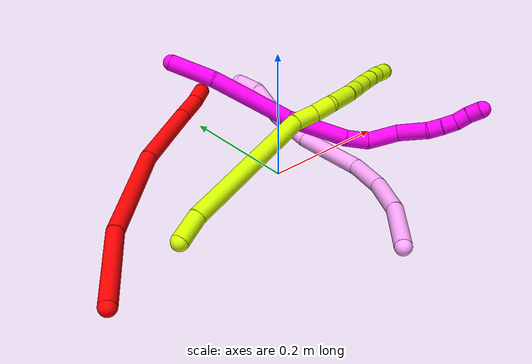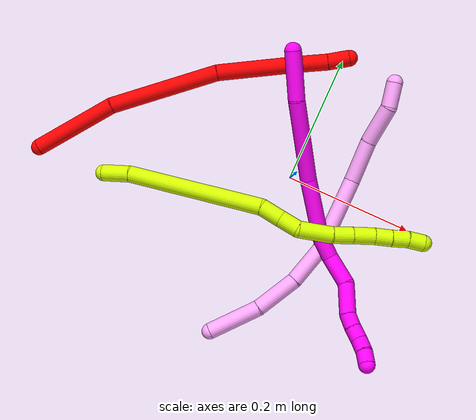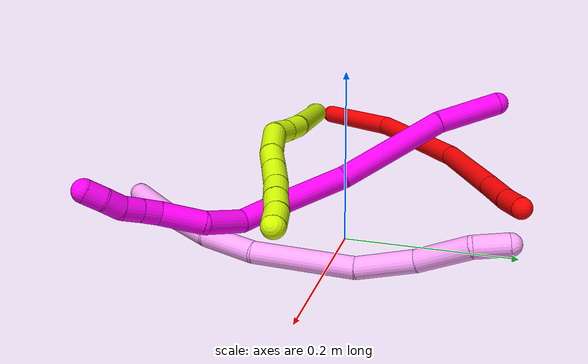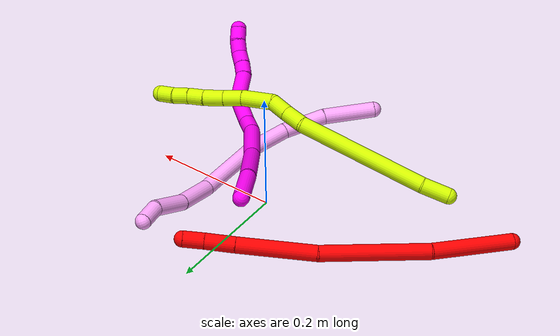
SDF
<sdf version="1.7">
 <world name="default">
  <model name="2">
   <static>0</static>
   <link name="2">
    <collision name="collision-cylinder-e_1_1_4">
     <pose>0.011812 0.044598 -0.045651 -2.36786 0.183011 -0.443083</pose>
     <geometry><cylinder><radius>0.0125</radius><length>0.129807</length></cylinder></geometry>
     <surface>
      <friction><ode><mu>1.16</mu><mu2>1.16</mu2><slip1>0</slip1><slip2>0</slip2></ode></friction>
      <contact><ode><kp>1e+06</kp><kd>1</kd><max_vel>0</max_vel><min_depth>0.001</min_depth></ode></contact>
     </surface>
    </collision>
    <visual name="visual-cylinder-e_1_1_4">
     <pose>0.011812 0.044598 -0.045651 -2.36786 0.183011 -0.443083</pose>
     <geometry><cylinder><radius>0.0125</radius><length>0.129807</length></cylinder></geometry>
     <material><ambient>1 0 0 1</ambient></material>
    </visual>
    <collision name="collision-cylinder-e_2_4_5">
     <pose>0.043772 0.157608 -0.136329 -2.1529 0.241213 -0.442358</pose>
     <geometry><cylinder><radius>0.0125</radius><length>0.168686</length></cylinder></geometry>
     <surface>
      <friction><ode><mu>1.16</mu><mu2>1.16</mu2><slip1>0</slip1><slip2>0</slip2></ode></friction>
      <contact><ode><kp>1e+06</kp><kd>1</kd><max_vel>0</max_vel><min_depth>0.001</min_depth></ode></contact>
     </surface>
    </collision>
    <visual name="visual-cylinder-e_2_4_5">
     <pose>0.043772 0.157608 -0.136329 -2.1529 0.241213 -0.442358</pose>
     <geometry><cylinder><radius>0.0125</radius><length>0.168686</length></cylinder></geometry>
     <material><ambient>1 0 0 1</ambient></material>
    </visual>
    <collision name="collision-cylinder-e_3_5_6">
     <pose>0.07869 0.280869 -0.20326 -1.95074 0.245073 -0.359656</pose>
     <geometry><cylinder><radius>0.0125</radius><length>0.121758</length></cylinder></geometry>
     <surface>
      <friction><ode><mu>1.16</mu><mu2>1.16</mu2><slip1>0</slip1><slip2>0</slip2></ode></friction>
      <contact><ode><kp>1e+06</kp><kd>1</kd><max_vel>0</max_vel><min_depth>0.001</min_depth></ode></contact>
     </surface>
    </collision>
    <visual name="visual-cylinder-e_3_5_6">
     <pose>0.07869 0.280869 -0.20326 -1.95074 0.245073 -0.359656</pose>
     <geometry><cylinder><radius>0.0125</radius><length>0.121758</length></cylinder></geometry>
     <material><ambient>1 0 0 1</ambient></material>
    </visual>
    <collision name="collision-cylinder-e_4_6_7">
     <pose>0.099025 0.356998 -0.233033 -1.92499 0.240469 -0.34356</pose>
     <geometry><cylinder><radius>0.0125</radius><length>0.046722</length></cylinder></geometry>
     <surface>
      <friction><ode><mu>1.16</mu><mu2>1.16</mu2><slip1>0</slip1><slip2>0</slip2></ode></friction>
      <contact><ode><kp>1e+06</kp><kd>1</kd><max_vel>0</max_vel><min_depth>0.001</min_depth></ode></contact>
     </surface>
    </collision>
    <visual name="visual-cylinder-e_4_6_7">
     <pose>0.099025 0.356998 -0.233033 -1.92499 0.240469 -0.34356</pose>
     <geometry><cylinder><radius>0.0125</radius><length>0.046722</length></cylinder></geometry>
     <material><ambient>1 0 0 1</ambient></material>
    </visual>
    <collision name="collision-cylinder-e_5_7_2">
     <pose>0.107863 0.392859 -0.247928 -2.01979 0.199645 -0.316199</pose>
     <geometry><cylinder><radius>0.0125</radius><length>0.033027</length></cylinder></geometry>
     <surface>
      <friction><ode><mu>1.16</mu><mu2>1.16</mu2><slip1>0</slip1><slip2>0</slip2></ode></friction>
      <contact><ode><kp>1e+06</kp><kd>1</kd><max_vel>0</max_vel><min_depth>0.001</min_depth></ode></contact>
     </surface>
    </collision>
    <visual name="visual-cylinder-e_5_7_2">
     <pose>0.107863 0.392859 -0.247928 -2.01979 0.199645 -0.316199</pose>
     <geometry><cylinder><radius>0.0125</radius><length>0.033027</length></cylinder></geometry>
     <material><ambient>1 0 0 1</ambient></material>
    </visual>
    <collision name="collision-sphere-2">
     <pose>0.111138 0.407441 -0.254953 0 -0 0</pose>
     <geometry><sphere><radius>0.0125</radius></sphere></geometry>
     <surface>
      <friction><ode><mu>1.16</mu><mu2>1.16</mu2><slip1>0</slip1><slip2>0</slip2></ode></friction>
      <contact><ode><kp>1e+06</kp><kd>1</kd><max_vel>0</max_vel><min_depth>0.001</min_depth></ode></contact>
     </surface>
    </collision>
    <visual name="visual-sphere-2">
     <pose>0.111138 0.407441 -0.254953 0 -0 0</pose>
     <geometry><sphere><radius>0.0125</radius></sphere></geometry>
     <material><ambient>1 0 0 1</ambient></material>
    </visual>
    <collision name="collision-sphere-7">
     <pose>0.104588 0.378278 -0.240902 0 -0 0</pose>
     <geometry><sphere><radius>0.0125</radius></sphere></geometry>
     <surface>
      <friction><ode><mu>1.16</mu><mu2>1.16</mu2><slip1>0</slip1><slip2>0</slip2></ode></friction>
      <contact><ode><kp>1e+06</kp><kd>1</kd><max_vel>0</max_vel><min_depth>0.001</min_depth></ode></contact>
     </surface>
    </collision>
    <visual name="visual-sphere-7">
     <pose>0.104588 0.378278 -0.240902 0 -0 0</pose>
     <geometry><sphere><radius>0.0125</radius></sphere></geometry>
     <material><ambient>1 0 0 1</ambient></material>
    </visual>
    <collision name="collision-sphere-6">
     <pose>0.093461 0.335717 -0.225164 0 -0 0</pose>
     <geometry><sphere><radius>0.0125</radius></sphere></geometry>
     <surface>
      <friction><ode><mu>1.16</mu><mu2>1.16</mu2><slip1>0</slip1><slip2>0</slip2></ode></friction>
      <contact><ode><kp>1e+06</kp><kd>1</kd><max_vel>0</max_vel><min_depth>0.001</min_depth></ode></contact>
     </surface>
    </collision>
    <visual name="visual-sphere-6">
     <pose>0.093461 0.335717 -0.225164 0 -0 0</pose>
     <geometry><sphere><radius>0.0125</radius></sphere></geometry>
     <material><ambient>1 0 0 1</ambient></material>
    </visual>
    <collision name="collision-sphere-5">
     <pose>0.06392 0.226021 -0.181357 0 -0 0</pose>
     <geometry><sphere><radius>0.0125</radius></sphere></geometry>
     <surface>
      <friction><ode><mu>1.16</mu><mu2>1.16</mu2><slip1>0</slip1><slip2>0</slip2></ode></friction>
      <contact><ode><kp>1e+06</kp><kd>1</kd><max_vel>0</max_vel><min_depth>0.001</min_depth></ode></contact>
     </surface>
    </collision>
    <visual name="visual-sphere-5">
     <pose>0.06392 0.226021 -0.181357 0 -0 0</pose>
     <geometry><sphere><radius>0.0125</radius></sphere></geometry>
     <material><ambient>1 0 0 1</ambient></material>
    </visual>
    <collision name="collision-sphere-1">
     <geometry><sphere><radius>0.0125</radius></sphere></geometry>
     <surface>
      <friction><ode><mu>1.16</mu><mu2>1.16</mu2><slip1>0</slip1><slip2>0</slip2></ode></friction>
      <contact><ode><kp>1e+06</kp><kd>1</kd><max_vel>0</max_vel><min_depth>0.001</min_depth></ode></contact>
     </surface>
    </collision>
    <visual name="visual-sphere-1">
     <geometry><sphere><radius>0.0125</radius></sphere></geometry>
     <material><ambient>1 0 0 1</ambient></material>
    </visual>
    <collision name="collision-sphere-4">
     <pose>0.023624 0.089196 -0.091301 0 -0 0</pose>
     <geometry><sphere><radius>0.0125</radius></sphere></geometry>
     <surface>
      <friction><ode><mu>1.16</mu><mu2>1.16</mu2><slip1>0</slip1><slip2>0</slip2></ode></friction>
      <contact><ode><kp>1e+06</kp><kd>1</kd><max_vel>0</max_vel><min_depth>0.001</min_depth></ode></contact>
     </surface>
    </collision>
    <visual name="visual-sphere-4">
     <pose>0.023624 0.089196 -0.091301 0 -0 0</pose>
     <geometry><sphere><radius>0.0125</radius></sphere></geometry>
     <material><ambient>1 0 0 1</ambient></material>
    </visual>
    <inertial>
     <pose>0.053374 0.192456 -0.145494 0 -0 0</pose>
     <mass>0.5</mass>
     <inertia>
      <ixx>0.000381</ixx>
      <ixy>0</ixy>
      <ixz>0</ixz>
      <iyy>-0.000598</iyy>
      <iyz>0</iyz>
      <izz>-0.000804</izz>
     </inertia>
    </inertial>
   </link>
   <pose>-0.371905 -0.117004 0.027183 2.18644 1.26649 0.750584</pose>
  </model>
  <model name="4">
   <static>0</static>
   <link name="4">
    <collision name="collision-cylinder-e_1_1_4">
     <pose>0.015264 0.006679 -0.037898 -2.96716 0.377626 -2.28332</pose>
     <geometry><cylinder><radius>0.0125</radius><length>0.082798</length></cylinder></geometry>
     <surface>
      <friction><ode><mu>1.16</mu><mu2>1.16</mu2><slip1>0</slip1><slip2>0</slip2></ode></friction>
      <contact><ode><kp>1e+06</kp><kd>1</kd><max_vel>0</max_vel><min_depth>0.001</min_depth></ode></contact>
     </surface>
    </collision>
    <visual name="visual-cylinder-e_1_1_4">
     <pose>0.015264 0.006679 -0.037898 -2.96716 0.377626 -2.28332</pose>
     <geometry><cylinder><radius>0.0125</radius><length>0.082798</length></cylinder></geometry>
     <material><ambient>1 0.65098 0.996078 1</ambient></material>
    </visual>
    <collision name="collision-cylinder-e_2_4_5">
     <pose>0.039503 0.025798 -0.107135 -2.76369 0.260115 -1.19977</pose>
     <geometry><cylinder><radius>0.0125</radius><length>0.069783</length></cylinder></geometry>
     <surface>
      <friction><ode><mu>1.16</mu><mu2>1.16</mu2><slip1>0</slip1><slip2>0</slip2></ode></friction>
      <contact><ode><kp>1e+06</kp><kd>1</kd><max_vel>0</max_vel><min_depth>0.001</min_depth></ode></contact>
     </surface>
    </collision>
    <visual name="visual-cylinder-e_2_4_5">
     <pose>0.039503 0.025798 -0.107135 -2.76369 0.260115 -1.19977</pose>
     <geometry><cylinder><radius>0.0125</radius><length>0.069783</length></cylinder></geometry>
     <material><ambient>1 0.65098 0.996078 1</ambient></material>
    </visual>
    <collision name="collision-cylinder-e_3_5_6">
     <pose>0.055684 0.055757 -0.164021 -2.54051 0.228616 -0.709521</pose>
     <geometry><cylinder><radius>0.0125</radius><length>0.06361</length></cylinder></geometry>
     <surface>
      <friction><ode><mu>1.16</mu><mu2>1.16</mu2><slip1>0</slip1><slip2>0</slip2></ode></friction>
      <contact><ode><kp>1e+06</kp><kd>1</kd><max_vel>0</max_vel><min_depth>0.001</min_depth></ode></contact>
     </surface>
    </collision>
    <visual name="visual-cylinder-e_3_5_6">
     <pose>0.055684 0.055757 -0.164021 -2.54051 0.228616 -0.709521</pose>
     <geometry><cylinder><radius>0.0125</radius><length>0.06361</length></cylinder></geometry>
     <material><ambient>1 0.65098 0.996078 1</ambient></material>
    </visual>
    <collision name="collision-cylinder-e_4_6_7">
     <pose>0.074157 0.116974 -0.226316 -2.26999 0.19479 -0.413638</pose>
     <geometry><cylinder><radius>0.0125</radius><length>0.116391</length></cylinder></geometry>
     <surface>
      <friction><ode><mu>1.16</mu><mu2>1.16</mu2><slip1>0</slip1><slip2>0</slip2></ode></friction>
      <contact><ode><kp>1e+06</kp><kd>1</kd><max_vel>0</max_vel><min_depth>0.001</min_depth></ode></contact>
     </surface>
    </collision>
    <visual name="visual-cylinder-e_4_6_7">
     <pose>0.074157 0.116974 -0.226316 -2.26999 0.19479 -0.413638</pose>
     <geometry><cylinder><radius>0.0125</radius><length>0.116391</length></cylinder></geometry>
     <material><ambient>1 0.65098 0.996078 1</ambient></material>
    </visual>
    <collision name="collision-cylinder-e_5_7_8">
     <pose>0.099264 0.186274 -0.279028 -2.12843 0.43016 -0.750133</pose>
     <geometry><cylinder><radius>0.0125</radius><length>0.066392</length></cylinder></geometry>
     <surface>
      <friction><ode><mu>1.16</mu><mu2>1.16</mu2><slip1>0</slip1><slip2>0</slip2></ode></friction>
      <contact><ode><kp>1e+06</kp><kd>1</kd><max_vel>0</max_vel><min_depth>0.001</min_depth></ode></contact>
     </surface>
    </collision>
    <visual name="visual-cylinder-e_5_7_8">
     <pose>0.099264 0.186274 -0.279028 -2.12843 0.43016 -0.750133</pose>
     <geometry><cylinder><radius>0.0125</radius><length>0.066392</length></cylinder></geometry>
     <material><ambient>1 0.65098 0.996078 1</ambient></material>
    </visual>
    <collision name="collision-cylinder-e_6_8_9">
     <pose>0.131779 0.232405 -0.309554 -2.18763 0.638276 -1.13779</pose>
     <geometry><cylinder><radius>0.0125</radius><length>0.062676</length></cylinder></geometry>
     <surface>
      <friction><ode><mu>1.16</mu><mu2>1.16</mu2><slip1>0</slip1><slip2>0</slip2></ode></friction>
      <contact><ode><kp>1e+06</kp><kd>1</kd><max_vel>0</max_vel><min_depth>0.001</min_depth></ode></contact>
     </surface>
    </collision>
    <visual name="visual-cylinder-e_6_8_9">
     <pose>0.131779 0.232405 -0.309554 -2.18763 0.638276 -1.13779</pose>
     <geometry><cylinder><radius>0.0125</radius><length>0.062676</length></cylinder></geometry>
     <material><ambient>1 0.65098 0.996078 1</ambient></material>
    </visual>
    <collision name="collision-cylinder-e_7_9_2">
     <pose>0.155115 0.269713 -0.332138 -2.01698 0.245727 -0.38701</pose>
     <geometry><cylinder><radius>0.0125</radius><length>0.03835</length></cylinder></geometry>
     <surface>
      <friction><ode><mu>1.16</mu><mu2>1.16</mu2><slip1>0</slip1><slip2>0</slip2></ode></friction>
      <contact><ode><kp>1e+06</kp><kd>1</kd><max_vel>0</max_vel><min_depth>0.001</min_depth></ode></contact>
     </surface>
    </collision>
    <visual name="visual-cylinder-e_7_9_2">
     <pose>0.155115 0.269713 -0.332138 -2.01698 0.245727 -0.38701</pose>
     <geometry><cylinder><radius>0.0125</radius><length>0.03835</length></cylinder></geometry>
     <material><ambient>1 0.65098 0.996078 1</ambient></material>
    </visual>
    <collision name="collision-sphere-2">
     <pose>0.15978 0.286491 -0.340164 0 -0 0</pose>
     <geometry><sphere><radius>0.0125</radius></sphere></geometry>
     <surface>
      <friction><ode><mu>1.16</mu><mu2>1.16</mu2><slip1>0</slip1><slip2>0</slip2></ode></friction>
      <contact><ode><kp>1e+06</kp><kd>1</kd><max_vel>0</max_vel><min_depth>0.001</min_depth></ode></contact>
     </surface>
    </collision>
    <visual name="visual-sphere-2">
     <pose>0.15978 0.286491 -0.340164 0 -0 0</pose>
     <geometry><sphere><radius>0.0125</radius></sphere></geometry>
     <material><ambient>1 0.65098 0.996078 1</ambient></material>
    </visual>
    <collision name="collision-sphere-9">
     <pose>0.150451 0.252935 -0.324112 0 -0 0</pose>
     <geometry><sphere><radius>0.0125</radius></sphere></geometry>
     <surface>
      <friction><ode><mu>1.16</mu><mu2>1.16</mu2><slip1>0</slip1><slip2>0</slip2></ode></friction>
      <contact><ode><kp>1e+06</kp><kd>1</kd><max_vel>0</max_vel><min_depth>0.001</min_depth></ode></contact>
     </surface>
    </collision>
    <visual name="visual-sphere-9">
     <pose>0.150451 0.252935 -0.324112 0 -0 0</pose>
     <geometry><sphere><radius>0.0125</radius></sphere></geometry>
     <material><ambient>1 0.65098 0.996078 1</ambient></material>
    </visual>
    <collision name="collision-sphere-4">
     <pose>0.030529 0.013357 -0.075797 0 -0 0</pose>
     <geometry><sphere><radius>0.0125</radius></sphere></geometry>
     <surface>
      <friction><ode><mu>1.16</mu><mu2>1.16</mu2><slip1>0</slip1><slip2>0</slip2></ode></friction>
      <contact><ode><kp>1e+06</kp><kd>1</kd><max_vel>0</max_vel><min_depth>0.001</min_depth></ode></contact>
     </surface>
    </collision>
    <visual name="visual-sphere-4">
     <pose>0.030529 0.013357 -0.075797 0 -0 0</pose>
     <geometry><sphere><radius>0.0125</radius></sphere></geometry>
     <material><ambient>1 0.65098 0.996078 1</ambient></material>
    </visual>
    <collision name="collision-sphere-1">
     <geometry><sphere><radius>0.0125</radius></sphere></geometry>
     <surface>
      <friction><ode><mu>1.16</mu><mu2>1.16</mu2><slip1>0</slip1><slip2>0</slip2></ode></friction>
      <contact><ode><kp>1e+06</kp><kd>1</kd><max_vel>0</max_vel><min_depth>0.001</min_depth></ode></contact>
     </surface>
    </collision>
    <visual name="visual-sphere-1">
     <geometry><sphere><radius>0.0125</radius></sphere></geometry>
     <material><ambient>1 0.65098 0.996078 1</ambient></material>
    </visual>
    <collision name="collision-sphere-8">
     <pose>0.113108 0.211875 -0.294995 0 -0 0</pose>
     <geometry><sphere><radius>0.0125</radius></sphere></geometry>
     <surface>
      <friction><ode><mu>1.16</mu><mu2>1.16</mu2><slip1>0</slip1><slip2>0</slip2></ode></friction>
      <contact><ode><kp>1e+06</kp><kd>1</kd><max_vel>0</max_vel><min_depth>0.001</min_depth></ode></contact>
     </surface>
    </collision>
    <visual name="visual-sphere-8">
     <pose>0.113108 0.211875 -0.294995 0 -0 0</pose>
     <geometry><sphere><radius>0.0125</radius></sphere></geometry>
     <material><ambient>1 0.65098 0.996078 1</ambient></material>
    </visual>
    <collision name="collision-sphere-5">
     <pose>0.048476 0.038239 -0.138474 0 -0 0</pose>
     <geometry><sphere><radius>0.0125</radius></sphere></geometry>
     <surface>
      <friction><ode><mu>1.16</mu><mu2>1.16</mu2><slip1>0</slip1><slip2>0</slip2></ode></friction>
      <contact><ode><kp>1e+06</kp><kd>1</kd><max_vel>0</max_vel><min_depth>0.001</min_depth></ode></contact>
     </surface>
    </collision>
    <visual name="visual-sphere-5">
     <pose>0.048476 0.038239 -0.138474 0 -0 0</pose>
     <geometry><sphere><radius>0.0125</radius></sphere></geometry>
     <material><ambient>1 0.65098 0.996078 1</ambient></material>
    </visual>
    <collision name="collision-sphere-6">
     <pose>0.062892 0.073276 -0.189569 0 -0 0</pose>
     <geometry><sphere><radius>0.0125</radius></sphere></geometry>
     <surface>
      <friction><ode><mu>1.16</mu><mu2>1.16</mu2><slip1>0</slip1><slip2>0</slip2></ode></friction>
      <contact><ode><kp>1e+06</kp><kd>1</kd><max_vel>0</max_vel><min_depth>0.001</min_depth></ode></contact>
     </surface>
    </collision>
    <visual name="visual-sphere-6">
     <pose>0.062892 0.073276 -0.189569 0 -0 0</pose>
     <geometry><sphere><radius>0.0125</radius></sphere></geometry>
     <material><ambient>1 0.65098 0.996078 1</ambient></material>
    </visual>
    <collision name="collision-sphere-7">
     <pose>0.085421 0.160672 -0.263062 0 -0 0</pose>
     <geometry><sphere><radius>0.0125</radius></sphere></geometry>
     <surface>
      <friction><ode><mu>1.16</mu><mu2>1.16</mu2><slip1>0</slip1><slip2>0</slip2></ode></friction>
      <contact><ode><kp>1e+06</kp><kd>1</kd><max_vel>0</max_vel><min_depth>0.001</min_depth></ode></contact>
     </surface>
    </collision>
    <visual name="visual-sphere-7">
     <pose>0.085421 0.160672 -0.263062 0 -0 0</pose>
     <geometry><sphere><radius>0.0125</radius></sphere></geometry>
     <material><ambient>1 0.65098 0.996078 1</ambient></material>
    </visual>
    <inertial>
     <pose>0.073984 0.113583 -0.196106 0 -0 0</pose>
     <mass>0.5</mass>
     <inertia>
      <ixx>-4e-06</ixx>
      <ixy>0</ixy>
      <ixz>0</ixz>
      <iyy>-0.000205</iyy>
      <iyz>0</iyz>
      <izz>-0.000287</izz>
     </inertia>
    </inertial>
   </link>
   <pose>-0.016049 -0.266772 0.021222 0.093661 -1.20024 0.619859</pose>
  </model>
  <model name="10">
   <static>0</static>
   <link name="10">
    <collision name="collision-cylinder-e_1_1_4">
     <pose>0.021918 -0.018648 -0.021149 2.41894 0.66077 1.47388</pose>
     <geometry><cylinder><radius>0.0125</radius><length>0.071427</length></cylinder></geometry>
     <surface>
      <friction><ode><mu>1.16</mu><mu2>1.16</mu2><slip1>0</slip1><slip2>0</slip2></ode></friction>
      <contact><ode><kp>1e+06</kp><kd>1</kd><max_vel>0</max_vel><min_depth>0.001</min_depth></ode></contact>
     </surface>
    </collision>
    <visual name="visual-cylinder-e_1_1_4">
     <pose>0.021918 -0.018648 -0.021149 2.41894 0.66077 1.47388</pose>
     <geometry><cylinder><radius>0.0125</radius><length>0.071427</length></cylinder></geometry>
     <material><ambient>1 0 0.964706 1</ambient></material>
    </visual>
    <collision name="collision-cylinder-e_2_4_5">
     <pose>0.07603 -0.063271 -0.088785 2.63207 0.543763 1.63888</pose>
     <geometry><cylinder><radius>0.0125</radius><length>0.124452</length></cylinder></geometry>
     <surface>
      <friction><ode><mu>1.16</mu><mu2>1.16</mu2><slip1>0</slip1><slip2>0</slip2></ode></friction>
      <contact><ode><kp>1e+06</kp><kd>1</kd><max_vel>0</max_vel><min_depth>0.001</min_depth></ode></contact>
     </surface>
    </collision>
    <visual name="visual-cylinder-e_2_4_5">
     <pose>0.07603 -0.063271 -0.088785 2.63207 0.543763 1.63888</pose>
     <geometry><cylinder><radius>0.0125</radius><length>0.124452</length></cylinder></geometry>
     <material><ambient>1 0 0.964706 1</ambient></material>
    </visual>
    <collision name="collision-cylinder-e_3_5_6">
     <pose>0.137992 -0.107646 -0.164729 2.58321 0.708607 1.82299</pose>
     <geometry><cylinder><radius>0.0125</radius><length>0.091487</length></cylinder></geometry>
     <surface>
      <friction><ode><mu>1.16</mu><mu2>1.16</mu2><slip1>0</slip1><slip2>0</slip2></ode></friction>
      <contact><ode><kp>1e+06</kp><kd>1</kd><max_vel>0</max_vel><min_depth>0.001</min_depth></ode></contact>
     </surface>
    </collision>
    <visual name="visual-cylinder-e_3_5_6">
     <pose>0.137992 -0.107646 -0.164729 2.58321 0.708607 1.82299</pose>
     <geometry><cylinder><radius>0.0125</radius><length>0.091487</length></cylinder></geometry>
     <material><ambient>1 0 0.964706 1</ambient></material>
    </visual>
    <collision name="collision-cylinder-e_4_6_7">
     <pose>0.180801 -0.129271 -0.204516 2.8391 0.878065 2.51394</pose>
     <geometry><cylinder><radius>0.0125</radius><length>0.033892</length></cylinder></geometry>
     <surface>
      <friction><ode><mu>1.16</mu><mu2>1.16</mu2><slip1>0</slip1><slip2>0</slip2></ode></friction>
      <contact><ode><kp>1e+06</kp><kd>1</kd><max_vel>0</max_vel><min_depth>0.001</min_depth></ode></contact>
     </surface>
    </collision>
    <visual name="visual-cylinder-e_4_6_7">
     <pose>0.180801 -0.129271 -0.204516 2.8391 0.878065 2.51394</pose>
     <geometry><cylinder><radius>0.0125</radius><length>0.033892</length></cylinder></geometry>
     <material><ambient>1 0 0.964706 1</ambient></material>
    </visual>
    <collision name="collision-cylinder-e_5_7_8">
     <pose>0.216523 -0.135201 -0.22073 2.7105 1.29271 2.57671</pose>
     <geometry><cylinder><radius>0.0125</radius><length>0.047175</length></cylinder></geometry>
     <surface>
      <friction><ode><mu>1.16</mu><mu2>1.16</mu2><slip1>0</slip1><slip2>0</slip2></ode></friction>
      <contact><ode><kp>1e+06</kp><kd>1</kd><max_vel>0</max_vel><min_depth>0.001</min_depth></ode></contact>
     </surface>
    </collision>
    <visual name="visual-cylinder-e_5_7_8">
     <pose>0.216523 -0.135201 -0.22073 2.7105 1.29271 2.57671</pose>
     <geometry><cylinder><radius>0.0125</radius><length>0.047175</length></cylinder></geometry>
     <material><ambient>1 0 0.964706 1</ambient></material>
    </visual>
    <collision name="collision-cylinder-e_6_8_9">
     <pose>0.258754 -0.151225 -0.228838 1.73634 0.966323 1.10935</pose>
     <geometry><cylinder><radius>0.0125</radius><length>0.047519</length></cylinder></geometry>
     <surface>
      <friction><ode><mu>1.16</mu><mu2>1.16</mu2><slip1>0</slip1><slip2>0</slip2></ode></friction>
      <contact><ode><kp>1e+06</kp><kd>1</kd><max_vel>0</max_vel><min_depth>0.001</min_depth></ode></contact>
     </surface>
    </collision>
    <visual name="visual-cylinder-e_6_8_9">
     <pose>0.258754 -0.151225 -0.228838 1.73634 0.966323 1.10935</pose>
     <geometry><cylinder><radius>0.0125</radius><length>0.047519</length></cylinder></geometry>
     <material><ambient>1 0 0.964706 1</ambient></material>
    </visual>
    <collision name="collision-cylinder-e_7_9_10">
     <pose>0.288222 -0.167445 -0.232251 1.95937 1.26473 1.65847</pose>
     <geometry><cylinder><radius>0.0125</radius><length>0.020806</length></cylinder></geometry>
     <surface>
      <friction><ode><mu>1.16</mu><mu2>1.16</mu2><slip1>0</slip1><slip2>0</slip2></ode></friction>
      <contact><ode><kp>1e+06</kp><kd>1</kd><max_vel>0</max_vel><min_depth>0.001</min_depth></ode></contact>
     </surface>
    </collision>
    <visual name="visual-cylinder-e_7_9_10">
     <pose>0.288222 -0.167445 -0.232251 1.95937 1.26473 1.65847</pose>
     <geometry><cylinder><radius>0.0125</radius><length>0.020806</length></cylinder></geometry>
     <material><ambient>1 0 0.964706 1</ambient></material>
    </visual>
    <collision name="collision-cylinder-e_8_10_11">
     <pose>0.308455 -0.172282 -0.234724 2.15702 1.34907 1.96002</pose>
     <geometry><cylinder><radius>0.0125</radius><length>0.021143</length></cylinder></geometry>
     <surface>
      <friction><ode><mu>1.16</mu><mu2>1.16</mu2><slip1>0</slip1><slip2>0</slip2></ode></friction>
      <contact><ode><kp>1e+06</kp><kd>1</kd><max_vel>0</max_vel><min_depth>0.001</min_depth></ode></contact>
     </surface>
    </collision>
    <visual name="visual-cylinder-e_8_10_11">
     <pose>0.308455 -0.172282 -0.234724 2.15702 1.34907 1.96002</pose>
     <geometry><cylinder><radius>0.0125</radius><length>0.021143</length></cylinder></geometry>
     <material><ambient>1 0 0.964706 1</ambient></material>
    </visual>
    <collision name="collision-cylinder-e_9_11_12">
     <pose>0.328915 -0.176633 -0.234251 0.940991 1.28451 0.727085</pose>
     <geometry><cylinder><radius>0.0125</radius><length>0.021157</length></cylinder></geometry>
     <surface>
      <friction><ode><mu>1.16</mu><mu2>1.16</mu2><slip1>0</slip1><slip2>0</slip2></ode></friction>
      <contact><ode><kp>1e+06</kp><kd>1</kd><max_vel>0</max_vel><min_depth>0.001</min_depth></ode></contact>
     </surface>
    </collision>
    <visual name="visual-cylinder-e_9_11_12">
     <pose>0.328915 -0.176633 -0.234251 0.940991 1.28451 0.727085</pose>
     <geometry><cylinder><radius>0.0125</radius><length>0.021157</length></cylinder></geometry>
     <material><ambient>1 0 0.964706 1</ambient></material>
    </visual>
    <collision name="collision-cylinder-e_10_12_2">
     <pose>0.348503 -0.183383 -0.231176 1.27618 1.12328 0.873189</pose>
     <geometry><cylinder><radius>0.0125</radius><length>0.020941</length></cylinder></geometry>
     <surface>
      <friction><ode><mu>1.16</mu><mu2>1.16</mu2><slip1>0</slip1><slip2>0</slip2></ode></friction>
      <contact><ode><kp>1e+06</kp><kd>1</kd><max_vel>0</max_vel><min_depth>0.001</min_depth></ode></contact>
     </surface>
    </collision>
    <visual name="visual-cylinder-e_10_12_2">
     <pose>0.348503 -0.183383 -0.231176 1.27618 1.12328 0.873189</pose>
     <geometry><cylinder><radius>0.0125</radius><length>0.020941</length></cylinder></geometry>
     <material><ambient>1 0 0.964706 1</ambient></material>
    </visual>
    <collision name="collision-sphere-2">
     <pose>0.357942 -0.187718 -0.22986 0 -0 0</pose>
     <geometry><sphere><radius>0.0125</radius></sphere></geometry>
     <surface>
      <friction><ode><mu>1.16</mu><mu2>1.16</mu2><slip1>0</slip1><slip2>0</slip2></ode></friction>
      <contact><ode><kp>1e+06</kp><kd>1</kd><max_vel>0</max_vel><min_depth>0.001</min_depth></ode></contact>
     </surface>
    </collision>
    <visual name="visual-sphere-2">
     <pose>0.357942 -0.187718 -0.22986 0 -0 0</pose>
     <geometry><sphere><radius>0.0125</radius></sphere></geometry>
     <material><ambient>1 0 0.964706 1</ambient></material>
    </visual>
    <collision name="collision-sphere-12">
     <pose>0.339064 -0.179047 -0.232491 0 -0 0</pose>
     <geometry><sphere><radius>0.0125</radius></sphere></geometry>
     <surface>
      <friction><ode><mu>1.16</mu><mu2>1.16</mu2><slip1>0</slip1><slip2>0</slip2></ode></friction>
      <contact><ode><kp>1e+06</kp><kd>1</kd><max_vel>0</max_vel><min_depth>0.001</min_depth></ode></contact>
     </surface>
    </collision>
    <visual name="visual-sphere-12">
     <pose>0.339064 -0.179047 -0.232491 0 -0 0</pose>
     <geometry><sphere><radius>0.0125</radius></sphere></geometry>
     <material><ambient>1 0 0.964706 1</ambient></material>
    </visual>
    <collision name="collision-sphere-11">
     <pose>0.318767 -0.174219 -0.23601 0 -0 0</pose>
     <geometry><sphere><radius>0.0125</radius></sphere></geometry>
     <surface>
      <friction><ode><mu>1.16</mu><mu2>1.16</mu2><slip1>0</slip1><slip2>0</slip2></ode></friction>
      <contact><ode><kp>1e+06</kp><kd>1</kd><max_vel>0</max_vel><min_depth>0.001</min_depth></ode></contact>
     </surface>
    </collision>
    <visual name="visual-sphere-11">
     <pose>0.318767 -0.174219 -0.23601 0 -0 0</pose>
     <geometry><sphere><radius>0.0125</radius></sphere></geometry>
     <material><ambient>1 0 0.964706 1</ambient></material>
    </visual>
    <collision name="collision-sphere-10">
     <pose>0.298142 -0.170346 -0.233438 0 -0 0</pose>
     <geometry><sphere><radius>0.0125</radius></sphere></geometry>
     <surface>
      <friction><ode><mu>1.16</mu><mu2>1.16</mu2><slip1>0</slip1><slip2>0</slip2></ode></friction>
      <contact><ode><kp>1e+06</kp><kd>1</kd><max_vel>0</max_vel><min_depth>0.001</min_depth></ode></contact>
     </surface>
    </collision>
    <visual name="visual-sphere-10">
     <pose>0.298142 -0.170346 -0.233438 0 -0 0</pose>
     <geometry><sphere><radius>0.0125</radius></sphere></geometry>
     <material><ambient>1 0 0.964706 1</ambient></material>
    </visual>
    <collision name="collision-sphere-9">
     <pose>0.278303 -0.164544 -0.231063 0 -0 0</pose>
     <geometry><sphere><radius>0.0125</radius></sphere></geometry>
     <surface>
      <friction><ode><mu>1.16</mu><mu2>1.16</mu2><slip1>0</slip1><slip2>0</slip2></ode></friction>
      <contact><ode><kp>1e+06</kp><kd>1</kd><max_vel>0</max_vel><min_depth>0.001</min_depth></ode></contact>
     </surface>
    </collision>
    <visual name="visual-sphere-9">
     <pose>0.278303 -0.164544 -0.231063 0 -0 0</pose>
     <geometry><sphere><radius>0.0125</radius></sphere></geometry>
     <material><ambient>1 0 0.964706 1</ambient></material>
    </visual>
    <collision name="collision-sphere-4">
     <pose>0.043837 -0.037297 -0.042298 0 -0 0</pose>
     <geometry><sphere><radius>0.0125</radius></sphere></geometry>
     <surface>
      <friction><ode><mu>1.16</mu><mu2>1.16</mu2><slip1>0</slip1><slip2>0</slip2></ode></friction>
      <contact><ode><kp>1e+06</kp><kd>1</kd><max_vel>0</max_vel><min_depth>0.001</min_depth></ode></contact>
     </surface>
    </collision>
    <visual name="visual-sphere-4">
     <pose>0.043837 -0.037297 -0.042298 0 -0 0</pose>
     <geometry><sphere><radius>0.0125</radius></sphere></geometry>
     <material><ambient>1 0 0.964706 1</ambient></material>
    </visual>
    <collision name="collision-sphere-1">
     <geometry><sphere><radius>0.0125</radius></sphere></geometry>
     <surface>
      <friction><ode><mu>1.16</mu><mu2>1.16</mu2><slip1>0</slip1><slip2>0</slip2></ode></friction>
      <contact><ode><kp>1e+06</kp><kd>1</kd><max_vel>0</max_vel><min_depth>0.001</min_depth></ode></contact>
     </surface>
    </collision>
    <visual name="visual-sphere-1">
     <geometry><sphere><radius>0.0125</radius></sphere></geometry>
     <material><ambient>1 0 0.964706 1</ambient></material>
    </visual>
    <collision name="collision-sphere-8">
     <pose>0.239204 -0.137907 -0.226613 0 -0 0</pose>
     <geometry><sphere><radius>0.0125</radius></sphere></geometry>
     <surface>
      <friction><ode><mu>1.16</mu><mu2>1.16</mu2><slip1>0</slip1><slip2>0</slip2></ode></friction>
      <contact><ode><kp>1e+06</kp><kd>1</kd><max_vel>0</max_vel><min_depth>0.001</min_depth></ode></contact>
     </surface>
    </collision>
    <visual name="visual-sphere-8">
     <pose>0.239204 -0.137907 -0.226613 0 -0 0</pose>
     <geometry><sphere><radius>0.0125</radius></sphere></geometry>
     <material><ambient>1 0 0.964706 1</ambient></material>
    </visual>
    <collision name="collision-sphere-5">
     <pose>0.108223 -0.089245 -0.135272 0 -0 0</pose>
     <geometry><sphere><radius>0.0125</radius></sphere></geometry>
     <surface>
      <friction><ode><mu>1.16</mu><mu2>1.16</mu2><slip1>0</slip1><slip2>0</slip2></ode></friction>
      <contact><ode><kp>1e+06</kp><kd>1</kd><max_vel>0</max_vel><min_depth>0.001</min_depth></ode></contact>
     </surface>
    </collision>
    <visual name="visual-sphere-5">
     <pose>0.108223 -0.089245 -0.135272 0 -0 0</pose>
     <geometry><sphere><radius>0.0125</radius></sphere></geometry>
     <material><ambient>1 0 0.964706 1</ambient></material>
    </visual>
    <collision name="collision-sphere-6">
     <pose>0.167761 -0.126047 -0.194185 0 -0 0</pose>
     <geometry><sphere><radius>0.0125</radius></sphere></geometry>
     <surface>
      <friction><ode><mu>1.16</mu><mu2>1.16</mu2><slip1>0</slip1><slip2>0</slip2></ode></friction>
      <contact><ode><kp>1e+06</kp><kd>1</kd><max_vel>0</max_vel><min_depth>0.001</min_depth></ode></contact>
     </surface>
    </collision>
    <visual name="visual-sphere-6">
     <pose>0.167761 -0.126047 -0.194185 0 -0 0</pose>
     <geometry><sphere><radius>0.0125</radius></sphere></geometry>
     <material><ambient>1 0 0.964706 1</ambient></material>
    </visual>
    <collision name="collision-sphere-7">
     <pose>0.193841 -0.132495 -0.214847 0 -0 0</pose>
     <geometry><sphere><radius>0.0125</radius></sphere></geometry>
     <surface>
      <friction><ode><mu>1.16</mu><mu2>1.16</mu2><slip1>0</slip1><slip2>0</slip2></ode></friction>
      <contact><ode><kp>1e+06</kp><kd>1</kd><max_vel>0</max_vel><min_depth>0.001</min_depth></ode></contact>
     </surface>
    </collision>
    <visual name="visual-sphere-7">
     <pose>0.193841 -0.132495 -0.214847 0 -0 0</pose>
     <geometry><sphere><radius>0.0125</radius></sphere></geometry>
     <material><ambient>1 0 0.964706 1</ambient></material>
    </visual>
    <inertial>
     <pose>0.158131 -0.103407 -0.150883 0 -0 0</pose>
     <mass>0.5</mass>
     <inertia>
      <ixx>0.000234</ixx>
      <ixy>0</ixy>
      <ixz>0</ixz>
      <iyy>0.000339</iyy>
      <iyz>0</iyz>
      <izz>-7.3e-05</izz>
     </inertia>
    </inertial>
   </link>
   <pose>-0.075191 0.157808 0.155451 0.012305 -0.494903 -0.500752</pose>
  </model>
  <model name="15">
   <static>0</static>
   <link name="15">
    <collision name="collision-cylinder-e_1_1_4">
     <pose>0.006282 0.007712 0.019066 -0.384348 0.296435 -0.058089</pose>
     <geometry><cylinder><radius>0.0125</radius><length>0.04301</length></cylinder></geometry>
     <surface>
      <friction><ode><mu>1.16</mu><mu2>1.16</mu2><slip1>0</slip1><slip2>0</slip2></ode></friction>
      <contact><ode><kp>1e+06</kp><kd>1</kd><max_vel>0</max_vel><min_depth>0.001</min_depth></ode></contact>
     </surface>
    </collision>
    <visual name="visual-cylinder-e_1_1_4">
     <pose>0.006282 0.007712 0.019066 -0.384348 0.296435 -0.058089</pose>
     <geometry><cylinder><radius>0.0125</radius><length>0.04301</length></cylinder></geometry>
     <material><ambient>0.835294 1 0 1</ambient></material>
    </visual>
    <collision name="collision-cylinder-e_2_4_5">
     <pose>0.051359 0.034804 0.132062 -0.20348 0.384384 -0.039728</pose>
     <geometry><cylinder><radius>0.0125</radius><length>0.206915</length></cylinder></geometry>
     <surface>
      <friction><ode><mu>1.16</mu><mu2>1.16</mu2><slip1>0</slip1><slip2>0</slip2></ode></friction>
      <contact><ode><kp>1e+06</kp><kd>1</kd><max_vel>0</max_vel><min_depth>0.001</min_depth></ode></contact>
     </surface>
    </collision>
    <visual name="visual-cylinder-e_2_4_5">
     <pose>0.051359 0.034804 0.132062 -0.20348 0.384384 -0.039728</pose>
     <geometry><cylinder><radius>0.0125</radius><length>0.206915</length></cylinder></geometry>
     <material><ambient>0.835294 1 0 1</ambient></material>
    </visual>
    <collision name="collision-cylinder-e_3_5_6">
     <pose>0.097819 0.052332 0.240274 0.129067 0.489039 0.032246</pose>
     <geometry><cylinder><radius>0.0125</radius><length>0.03263</length></cylinder></geometry>
     <surface>
      <friction><ode><mu>1.16</mu><mu2>1.16</mu2><slip1>0</slip1><slip2>0</slip2></ode></friction>
      <contact><ode><kp>1e+06</kp><kd>1</kd><max_vel>0</max_vel><min_depth>0.001</min_depth></ode></contact>
     </surface>
    </collision>
    <visual name="visual-cylinder-e_3_5_6">
     <pose>0.097819 0.052332 0.240274 0.129067 0.489039 0.032246</pose>
     <geometry><cylinder><radius>0.0125</radius><length>0.03263</length></cylinder></geometry>
     <material><ambient>0.835294 1 0 1</ambient></material>
    </visual>
    <collision name="collision-cylinder-e_4_6_7">
     <pose>0.111411 0.04902 0.268199 0.106488 0.407863 0.022042</pose>
     <geometry><cylinder><radius>0.0125</radius><length>0.029891</length></cylinder></geometry>
     <surface>
      <friction><ode><mu>1.16</mu><mu2>1.16</mu2><slip1>0</slip1><slip2>0</slip2></ode></friction>
      <contact><ode><kp>1e+06</kp><kd>1</kd><max_vel>0</max_vel><min_depth>0.001</min_depth></ode></contact>
     </surface>
    </collision>
    <visual name="visual-cylinder-e_4_6_7">
     <pose>0.111411 0.04902 0.268199 0.106488 0.407863 0.022042</pose>
     <geometry><cylinder><radius>0.0125</radius><length>0.029891</length></cylinder></geometry>
     <material><ambient>0.835294 1 0 1</ambient></material>
    </visual>
    <collision name="collision-cylinder-e_5_7_8">
     <pose>0.133773 0.054246 0.299612 -0.359777 0.713414 -0.135328</pose>
     <geometry><cylinder><radius>0.0125</radius><length>0.050223</length></cylinder></geometry>
     <surface>
      <friction><ode><mu>1.16</mu><mu2>1.16</mu2><slip1>0</slip1><slip2>0</slip2></ode></friction>
      <contact><ode><kp>1e+06</kp><kd>1</kd><max_vel>0</max_vel><min_depth>0.001</min_depth></ode></contact>
     </surface>
    </collision>
    <visual name="visual-cylinder-e_5_7_8">
     <pose>0.133773 0.054246 0.299612 -0.359777 0.713414 -0.135328</pose>
     <geometry><cylinder><radius>0.0125</radius><length>0.050223</length></cylinder></geometry>
     <material><ambient>0.835294 1 0 1</ambient></material>
    </visual>
    <collision name="collision-cylinder-e_6_8_9">
     <pose>0.160376 0.066926 0.326691 -0.572244 0.743041 -0.228248</pose>
     <geometry><cylinder><radius>0.0125</radius><length>0.030066</length></cylinder></geometry>
     <surface>
      <friction><ode><mu>1.16</mu><mu2>1.16</mu2><slip1>0</slip1><slip2>0</slip2></ode></friction>
      <contact><ode><kp>1e+06</kp><kd>1</kd><max_vel>0</max_vel><min_depth>0.001</min_depth></ode></contact>
     </surface>
    </collision>
    <visual name="visual-cylinder-e_6_8_9">
     <pose>0.160376 0.066926 0.326691 -0.572244 0.743041 -0.228248</pose>
     <geometry><cylinder><radius>0.0125</radius><length>0.030066</length></cylinder></geometry>
     <material><ambient>0.835294 1 0 1</ambient></material>
    </visual>
    <collision name="collision-cylinder-e_7_9_10">
     <pose>0.181307 0.079222 0.34652 -0.539537 0.720166 -0.207462</pose>
     <geometry><cylinder><radius>0.0125</radius><length>0.032632</length></cylinder></geometry>
     <surface>
      <friction><ode><mu>1.16</mu><mu2>1.16</mu2><slip1>0</slip1><slip2>0</slip2></ode></friction>
      <contact><ode><kp>1e+06</kp><kd>1</kd><max_vel>0</max_vel><min_depth>0.001</min_depth></ode></contact>
     </surface>
    </collision>
    <visual name="visual-cylinder-e_7_9_10">
     <pose>0.181307 0.079222 0.34652 -0.539537 0.720166 -0.207462</pose>
     <geometry><cylinder><radius>0.0125</radius><length>0.032632</length></cylinder></geometry>
     <material><ambient>0.835294 1 0 1</ambient></material>
    </visual>
    <collision name="collision-cylinder-e_8_10_11">
     <pose>0.200159 0.089452 0.365901 -0.417523 0.695677 -0.153323</pose>
     <geometry><cylinder><radius>0.0125</radius><length>0.025249</length></cylinder></geometry>
     <surface>
      <friction><ode><mu>1.16</mu><mu2>1.16</mu2><slip1>0</slip1><slip2>0</slip2></ode></friction>
      <contact><ode><kp>1e+06</kp><kd>1</kd><max_vel>0</max_vel><min_depth>0.001</min_depth></ode></contact>
     </surface>
    </collision>
    <visual name="visual-cylinder-e_8_10_11">
     <pose>0.200159 0.089452 0.365901 -0.417523 0.695677 -0.153323</pose>
     <geometry><cylinder><radius>0.0125</radius><length>0.025249</length></cylinder></geometry>
     <material><ambient>0.835294 1 0 1</ambient></material>
    </visual>
    <collision name="collision-cylinder-e_9_11_12">
     <pose>0.216737 0.097825 0.382851 -0.502142 0.743407 -0.199304</pose>
     <geometry><cylinder><radius>0.0125</radius><length>0.025079</length></cylinder></geometry>
     <surface>
      <friction><ode><mu>1.16</mu><mu2>1.16</mu2><slip1>0</slip1><slip2>0</slip2></ode></friction>
      <contact><ode><kp>1e+06</kp><kd>1</kd><max_vel>0</max_vel><min_depth>0.001</min_depth></ode></contact>
     </surface>
    </collision>
    <visual name="visual-cylinder-e_9_11_12">
     <pose>0.216737 0.097825 0.382851 -0.502142 0.743407 -0.199304</pose>
     <geometry><cylinder><radius>0.0125</radius><length>0.025079</length></cylinder></geometry>
     <material><ambient>0.835294 1 0 1</ambient></material>
    </visual>
    <collision name="collision-cylinder-e_10_12_2">
     <pose>0.233658 0.10472 0.399342 -0.284097 0.767064 -0.115287</pose>
     <geometry><cylinder><radius>0.0125</radius><length>0.024306</length></cylinder></geometry>
     <surface>
      <friction><ode><mu>1.16</mu><mu2>1.16</mu2><slip1>0</slip1><slip2>0</slip2></ode></friction>
      <contact><ode><kp>1e+06</kp><kd>1</kd><max_vel>0</max_vel><min_depth>0.001</min_depth></ode></contact>
     </surface>
    </collision>
    <visual name="visual-cylinder-e_10_12_2">
     <pose>0.233658 0.10472 0.399342 -0.284097 0.767064 -0.115287</pose>
     <geometry><cylinder><radius>0.0125</radius><length>0.024306</length></cylinder></geometry>
     <material><ambient>0.835294 1 0 1</ambient></material>
    </visual>
    <collision name="collision-sphere-2">
     <pose>0.242092 0.107173 0.407741 0 -0 0</pose>
     <geometry><sphere><radius>0.0125</radius></sphere></geometry>
     <surface>
      <friction><ode><mu>1.16</mu><mu2>1.16</mu2><slip1>0</slip1><slip2>0</slip2></ode></friction>
      <contact><ode><kp>1e+06</kp><kd>1</kd><max_vel>0</max_vel><min_depth>0.001</min_depth></ode></contact>
     </surface>
    </collision>
    <visual name="visual-sphere-2">
     <pose>0.242092 0.107173 0.407741 0 -0 0</pose>
     <geometry><sphere><radius>0.0125</radius></sphere></geometry>
     <material><ambient>0.835294 1 0 1</ambient></material>
    </visual>
    <collision name="collision-sphere-12">
     <pose>0.225223 0.102268 0.390943 0 -0 0</pose>
     <geometry><sphere><radius>0.0125</radius></sphere></geometry>
     <surface>
      <friction><ode><mu>1.16</mu><mu2>1.16</mu2><slip1>0</slip1><slip2>0</slip2></ode></friction>
      <contact><ode><kp>1e+06</kp><kd>1</kd><max_vel>0</max_vel><min_depth>0.001</min_depth></ode></contact>
     </surface>
    </collision>
    <visual name="visual-sphere-12">
     <pose>0.225223 0.102268 0.390943 0 -0 0</pose>
     <geometry><sphere><radius>0.0125</radius></sphere></geometry>
     <material><ambient>0.835294 1 0 1</ambient></material>
    </visual>
    <collision name="collision-sphere-11">
     <pose>0.20825 0.093382 0.374759 0 -0 0</pose>
     <geometry><sphere><radius>0.0125</radius></sphere></geometry>
     <surface>
      <friction><ode><mu>1.16</mu><mu2>1.16</mu2><slip1>0</slip1><slip2>0</slip2></ode></friction>
      <contact><ode><kp>1e+06</kp><kd>1</kd><max_vel>0</max_vel><min_depth>0.001</min_depth></ode></contact>
     </surface>
    </collision>
    <visual name="visual-sphere-11">
     <pose>0.20825 0.093382 0.374759 0 -0 0</pose>
     <geometry><sphere><radius>0.0125</radius></sphere></geometry>
     <material><ambient>0.835294 1 0 1</ambient></material>
    </visual>
    <collision name="collision-sphere-10">
     <pose>0.192068 0.085523 0.357043 0 -0 0</pose>
     <geometry><sphere><radius>0.0125</radius></sphere></geometry>
     <surface>
      <friction><ode><mu>1.16</mu><mu2>1.16</mu2><slip1>0</slip1><slip2>0</slip2></ode></friction>
      <contact><ode><kp>1e+06</kp><kd>1</kd><max_vel>0</max_vel><min_depth>0.001</min_depth></ode></contact>
     </surface>
    </collision>
    <visual name="visual-sphere-10">
     <pose>0.192068 0.085523 0.357043 0 -0 0</pose>
     <geometry><sphere><radius>0.0125</radius></sphere></geometry>
     <material><ambient>0.835294 1 0 1</ambient></material>
    </visual>
    <collision name="collision-sphere-9">
     <pose>0.170546 0.072921 0.335998 0 -0 0</pose>
     <geometry><sphere><radius>0.0125</radius></sphere></geometry>
     <surface>
      <friction><ode><mu>1.16</mu><mu2>1.16</mu2><slip1>0</slip1><slip2>0</slip2></ode></friction>
      <contact><ode><kp>1e+06</kp><kd>1</kd><max_vel>0</max_vel><min_depth>0.001</min_depth></ode></contact>
     </surface>
    </collision>
    <visual name="visual-sphere-9">
     <pose>0.170546 0.072921 0.335998 0 -0 0</pose>
     <geometry><sphere><radius>0.0125</radius></sphere></geometry>
     <material><ambient>0.835294 1 0 1</ambient></material>
    </visual>
    <collision name="collision-sphere-4">
     <pose>0.012564 0.015423 0.038133 0 -0 0</pose>
     <geometry><sphere><radius>0.0125</radius></sphere></geometry>
     <surface>
      <friction><ode><mu>1.16</mu><mu2>1.16</mu2><slip1>0</slip1><slip2>0</slip2></ode></friction>
      <contact><ode><kp>1e+06</kp><kd>1</kd><max_vel>0</max_vel><min_depth>0.001</min_depth></ode></contact>
     </surface>
    </collision>
    <visual name="visual-sphere-4">
     <pose>0.012564 0.015423 0.038133 0 -0 0</pose>
     <geometry><sphere><radius>0.0125</radius></sphere></geometry>
     <material><ambient>0.835294 1 0 1</ambient></material>
    </visual>
    <collision name="collision-sphere-1">
     <geometry><sphere><radius>0.0125</radius></sphere></geometry>
     <surface>
      <friction><ode><mu>1.16</mu><mu2>1.16</mu2><slip1>0</slip1><slip2>0</slip2></ode></friction>
      <contact><ode><kp>1e+06</kp><kd>1</kd><max_vel>0</max_vel><min_depth>0.001</min_depth></ode></contact>
     </surface>
    </collision>
    <visual name="visual-sphere-1">
     <geometry><sphere><radius>0.0125</radius></sphere></geometry>
     <material><ambient>0.835294 1 0 1</ambient></material>
    </visual>
    <collision name="collision-sphere-8">
     <pose>0.150206 0.060931 0.317384 0 -0 0</pose>
     <geometry><sphere><radius>0.0125</radius></sphere></geometry>
     <surface>
      <friction><ode><mu>1.16</mu><mu2>1.16</mu2><slip1>0</slip1><slip2>0</slip2></ode></friction>
      <contact><ode><kp>1e+06</kp><kd>1</kd><max_vel>0</max_vel><min_depth>0.001</min_depth></ode></contact>
     </surface>
    </collision>
    <visual name="visual-sphere-8">
     <pose>0.150206 0.060931 0.317384 0 -0 0</pose>
     <geometry><sphere><radius>0.0125</radius></sphere></geometry>
     <material><ambient>0.835294 1 0 1</ambient></material>
    </visual>
    <collision name="collision-sphere-5">
     <pose>0.090154 0.054185 0.225992 0 -0 0</pose>
     <geometry><sphere><radius>0.0125</radius></sphere></geometry>
     <surface>
      <friction><ode><mu>1.16</mu><mu2>1.16</mu2><slip1>0</slip1><slip2>0</slip2></ode></friction>
      <contact><ode><kp>1e+06</kp><kd>1</kd><max_vel>0</max_vel><min_depth>0.001</min_depth></ode></contact>
     </surface>
    </collision>
    <visual name="visual-sphere-5">
     <pose>0.090154 0.054185 0.225992 0 -0 0</pose>
     <geometry><sphere><radius>0.0125</radius></sphere></geometry>
     <material><ambient>0.835294 1 0 1</ambient></material>
    </visual>
    <collision name="collision-sphere-6">
     <pose>0.105483 0.050478 0.254557 0 -0 0</pose>
     <geometry><sphere><radius>0.0125</radius></sphere></geometry>
     <surface>
      <friction><ode><mu>1.16</mu><mu2>1.16</mu2><slip1>0</slip1><slip2>0</slip2></ode></friction>
      <contact><ode><kp>1e+06</kp><kd>1</kd><max_vel>0</max_vel><min_depth>0.001</min_depth></ode></contact>
     </surface>
    </collision>
    <visual name="visual-sphere-6">
     <pose>0.105483 0.050478 0.254557 0 -0 0</pose>
     <geometry><sphere><radius>0.0125</radius></sphere></geometry>
     <material><ambient>0.835294 1 0 1</ambient></material>
    </visual>
    <collision name="collision-sphere-7">
     <pose>0.117339 0.047561 0.281841 0 -0 0</pose>
     <geometry><sphere><radius>0.0125</radius></sphere></geometry>
     <surface>
      <friction><ode><mu>1.16</mu><mu2>1.16</mu2><slip1>0</slip1><slip2>0</slip2></ode></friction>
      <contact><ode><kp>1e+06</kp><kd>1</kd><max_vel>0</max_vel><min_depth>0.001</min_depth></ode></contact>
     </surface>
    </collision>
    <visual name="visual-sphere-7">
     <pose>0.117339 0.047561 0.281841 0 -0 0</pose>
     <geometry><sphere><radius>0.0125</radius></sphere></geometry>
     <material><ambient>0.835294 1 0 1</ambient></material>
    </visual>
    <inertial>
     <pose>0.102089 0.05057 0.217453 0 -0 0</pose>
     <mass>0.5</mass>
     <inertia>
      <ixx>0.000714</ixx>
      <ixy>0</ixy>
      <ixz>0</ixz>
      <iyy>0.00075</iyy>
      <iyz>0</iyz>
      <izz>-0.000422</izz>
     </inertia>
    </inertial>
   </link>
   <pose>-0.260431 -0.112079 0.064747 0.034827 0.94399 0.01223</pose>
  </model>
 </world>
</sdf>
